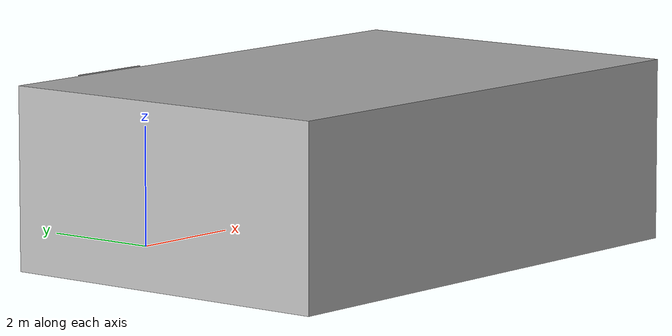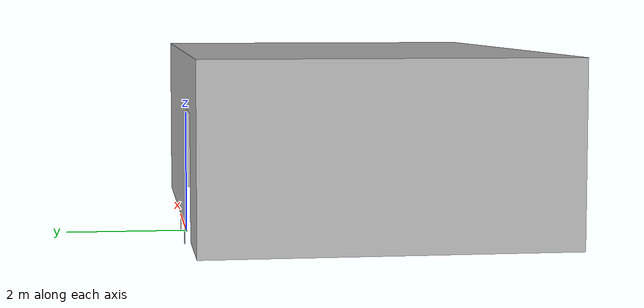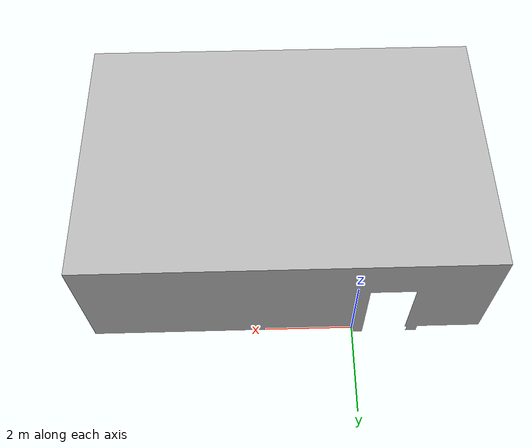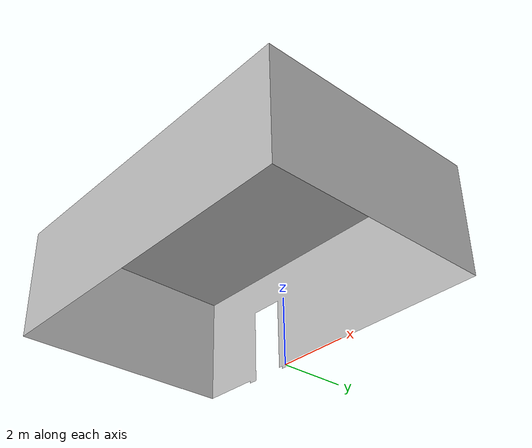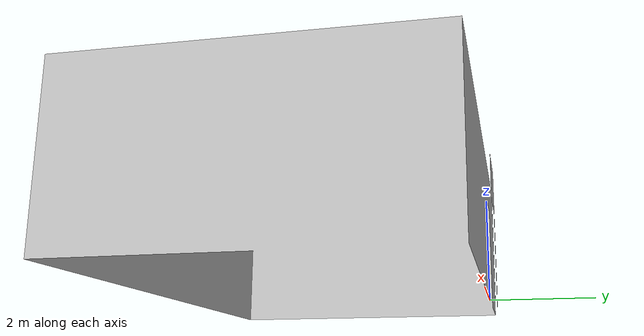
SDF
<?xml version="1.0" ?>
<sdf version="1.5">
  <model name="meeting_room_large">
    <static>true</static>
    <link name="link">
      <collision name="collision">
        <geometry>
          <mesh>
            <uri>model://meeting_room_large/meshes/meeting_room_large.obj</uri>
            <scale>0.01 0.01 0.01</scale>
          </mesh>
        </geometry>
      </collision>
      <visual name="visual">
        <geometry>
          <mesh>
            <uri>model://meeting_room_large/meshes/meeting_room_large.obj</uri>
            <scale>0.01 0.01 0.01</scale>
          </mesh>
        </geometry>
      </visual>
    </link>
  </model>
</sdf>
